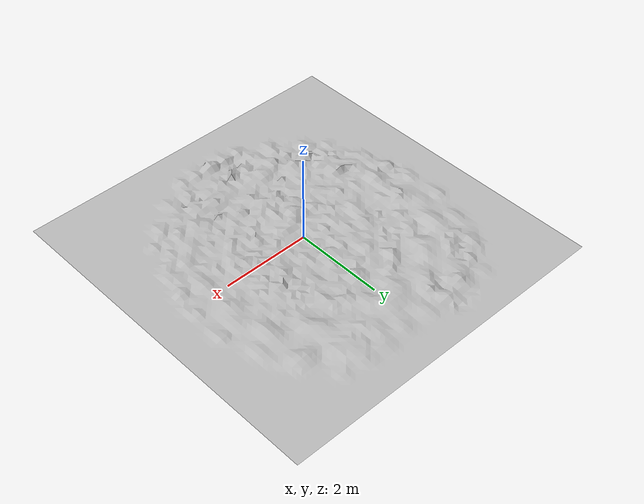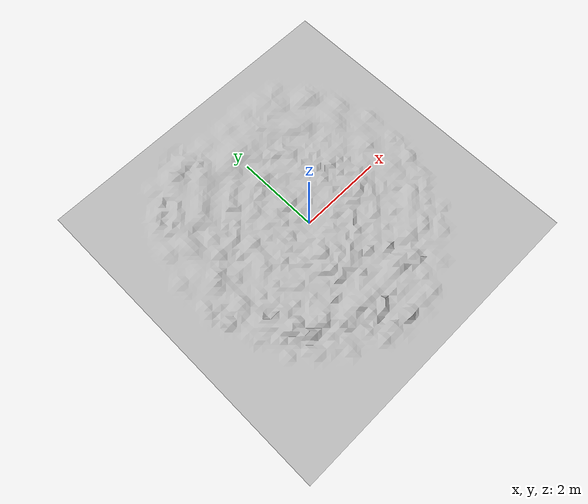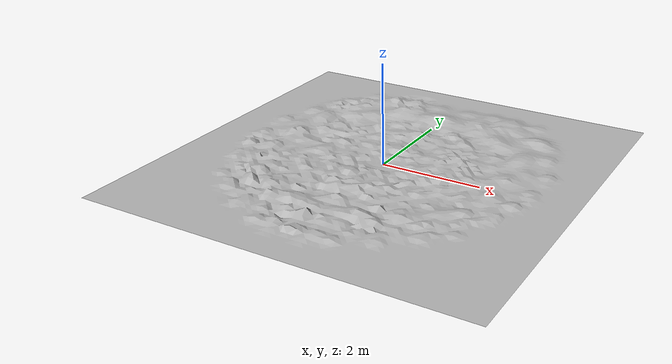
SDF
<?xml version="1.0" ?>
<sdf version='1.5'>
  <world name='default'>
    <light name='sun' type='directional'>
      <cast_shadows>1</cast_shadows>
      <pose>0 0 10 0 -0 0</pose>
      <diffuse>0.8 0.8 0.8 1</diffuse>
      <specular>0.2 0.2 0.2 1</specular>
      <attenuation>
        <range>1000</range>
        <constant>0.9</constant>
        <linear>0.01</linear>
        <quadratic>0.001</quadratic>
      </attenuation>
      <direction>-0.5 0.1 -0.9</direction>
      <spot>
        <inner_angle>0</inner_angle>
        <outer_angle>0</outer_angle>
        <falloff>0</falloff>
      </spot>
    </light>
    <gravity>0 0 -9.8</gravity>
    <magnetic_field>6e-06 2.3e-05 -4.2e-05</magnetic_field>
    <atmosphere type='adiabatic'/>
    <physics type='ode'>
      <max_step_size>0.005</max_step_size>

      <!-- Run as fast as possible -->
      <real_time_update_rate>0</real_time_update_rate>

      <ode>
          <constraints>
              <!-- Simulator.cpp -->
              <erp>0.1</erp>
              <cfm>10e-6</cfm>

              <!-- Making this smaller seems to decrease rather than increase stability. -->
              <contact_max_correcting_vel>100</contact_max_correcting_vel>
              <contact_surface_layer>1e-8</contact_surface_layer>
          </constraints>
          <solver>
              <type>world</type>
          </solver>
      </ode>
    </physics>
    <scene>
      <ambient>0.4 0.4 0.4 1</ambient>
      <background>0.7 0.7 0.7 1</background>
      <shadows>1</shadows>
      <origin_visual>0</origin_visual>
      <grid>0</grid>
    </scene>
    <wind/>
    <spherical_coordinates>
      <surface_model>EARTH_WGS84</surface_model>
      <latitude_deg>0</latitude_deg>
      <longitude_deg>0</longitude_deg>
      <elevation>0</elevation>
      <heading_deg>0</heading_deg>
    </spherical_coordinates>
    <model name='sphere'>
      <static>1</static>
      <pose>0 0 0 0 -0 0</pose>
      <link name='link'>
        <pose>0 0 0 0 -0 0</pose>
        <collision name='collision'>
          <geometry>
            <mesh>
              <uri>model://hills_scaled/meshes/hills_scaled.dae</uri>
            </mesh>
          </geometry>
          <max_contacts>10</max_contacts>
          <surface>
            <contact>
              <ode/>
            </contact>
            <bounce/>
            <friction>
              <torsional>
                <ode/>
              </torsional>
              <ode/>
            </friction>
          </surface>
        </collision>
        <visual name='visual'>
          <geometry>
            <mesh>
              <uri>model://hills_scaled/meshes/hills_scaled.dae</uri>
            </mesh>
          </geometry>
        </visual>
        <self_collide>0</self_collide>
        <enable_wind>0</enable_wind>
        <kinematic>0</kinematic>
      </link>
    </model>
    <plugin name="revolve-world" filename="libWorldControlPlugin.so" />
  </world>
</sdf>
